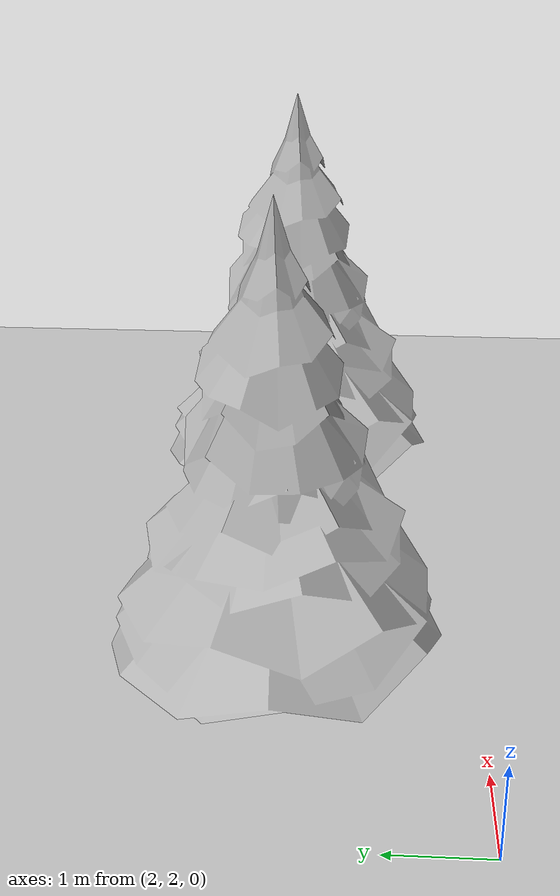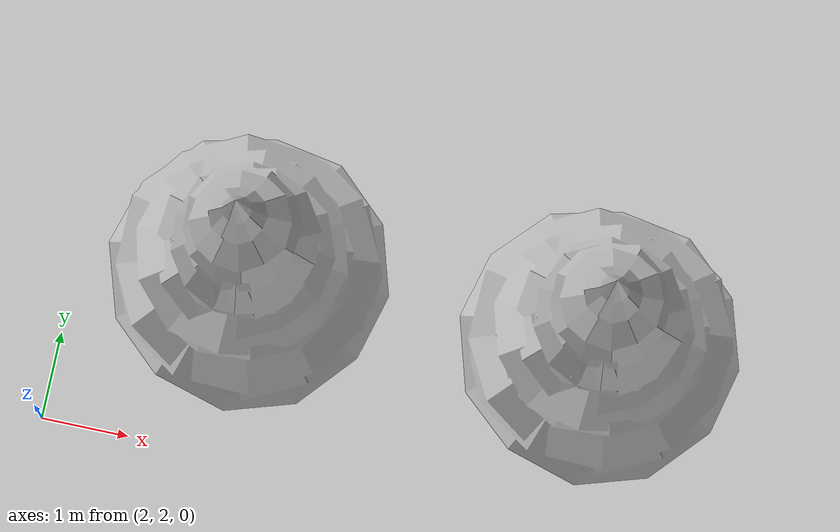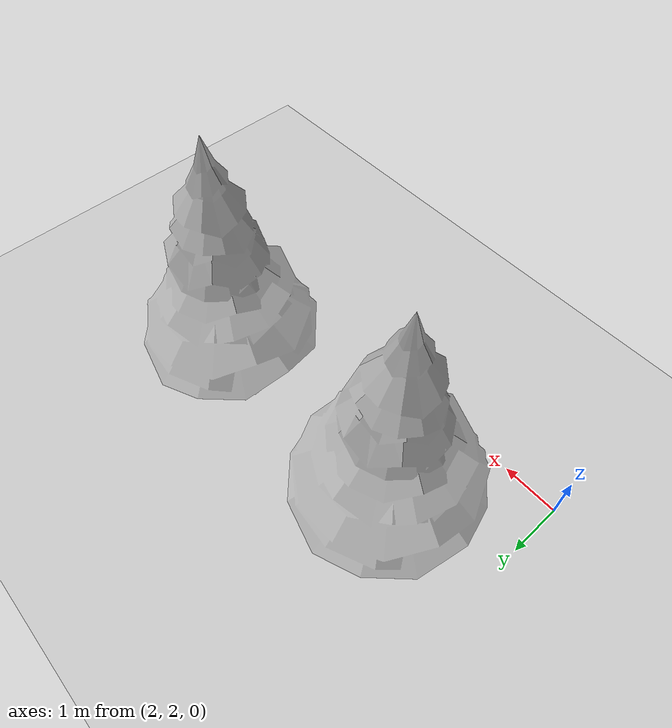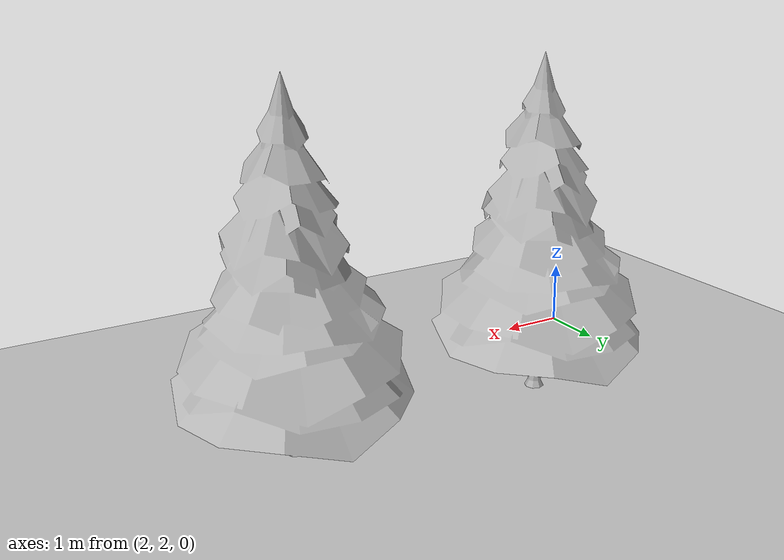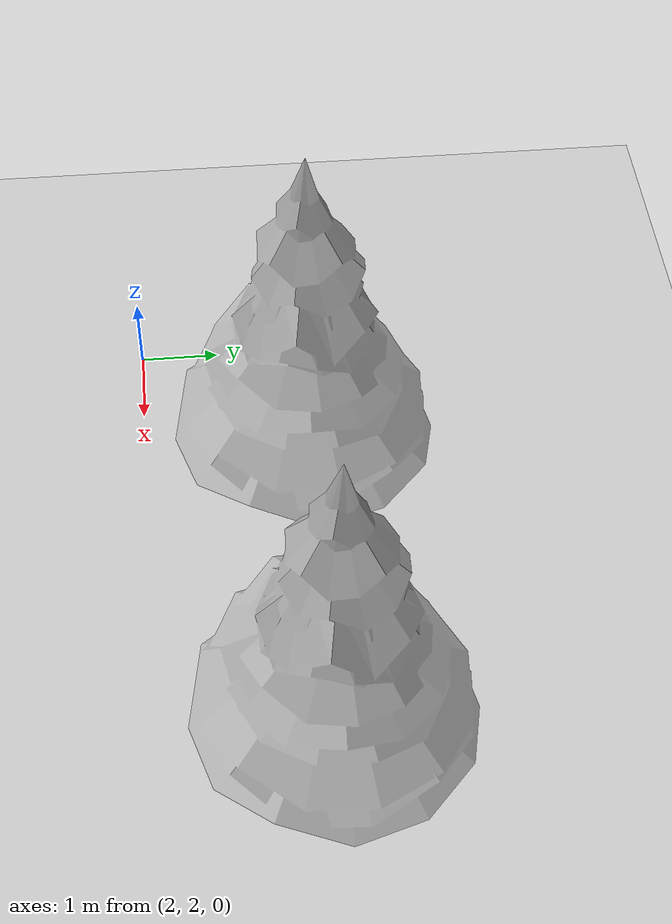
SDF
<?xml version="1.0" ?>
<sdf version="1.5">
	<world name="default">
		<!-- A global light source -->
		<include>
			<uri>model://sun</uri>
		</include>
		<!-- A ground plane -->
		<include>
			<uri>model://ground_plane</uri>
		</include>

		<include>
			<uri>model://pine_tree</uri>
			<static>false</static>
			<pose>4 4 0 0 0 0</pose>
		</include>

		<include>
			<uri>model://pine_tree</uri>
			<static>false</static>
			<pose>8 4 0 0 0 0</pose>
		</include>

	</world>
</sdf>

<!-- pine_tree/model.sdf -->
<sdf version="1.6">
  <model name="pine_tree">
    <static>true</static>
    <link name="link">
      <collision name="collision">
        <geometry>
          <mesh>
            <uri>file://isr-testbed/pine_tree/meshes/pine_tree.dae</uri>
          </mesh>
        </geometry>
      </collision>
      <visual name="branch">
        <geometry>
          <mesh>
            <uri>file://isr-testbed/pine_tree/meshes/pine_tree.dae</uri>
            <submesh>
              <name>Branch</name>
            </submesh>
          </mesh>
        </geometry>
        <material>
          <script>
            <uri>file://isr-testbed/pine_tree/materials/scripts/</uri>
            <uri>file://isr-testbed/pine_tree/materials/textures/</uri>
            <name>PineTree/Branch</name>
          </script>
        </material>
      </visual>
      <visual name="bark">
        <geometry>
          <mesh>
            <uri>file://isr-testbed/pine_tree/meshes/pine_tree.dae</uri>
            <submesh>
              <name>Bark</name>
            </submesh>
          </mesh>
        </geometry>
        <material>
          <script>
            <uri>file://isr-testbed/pine_tree/materials/scripts/</uri>
            <uri>file://isr-testbed/pine_tree/materials/textures/</uri>
            <name>PineTree/Bark</name>
          </script>
        </material>
      </visual>
    </link>
  </model>
</sdf>
